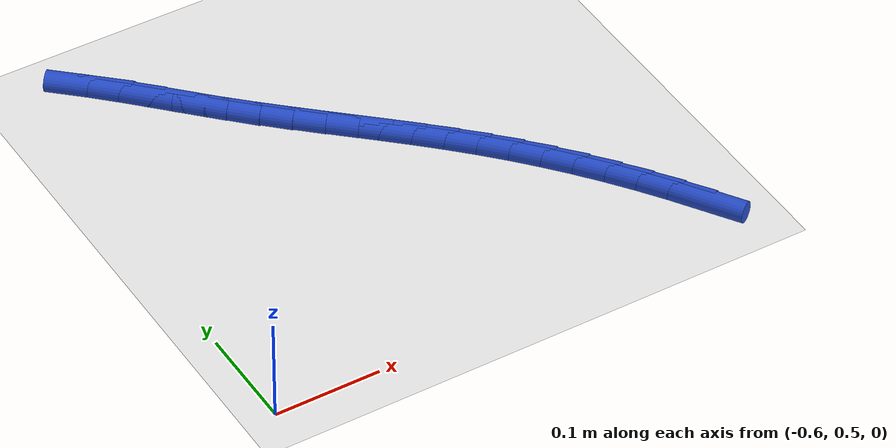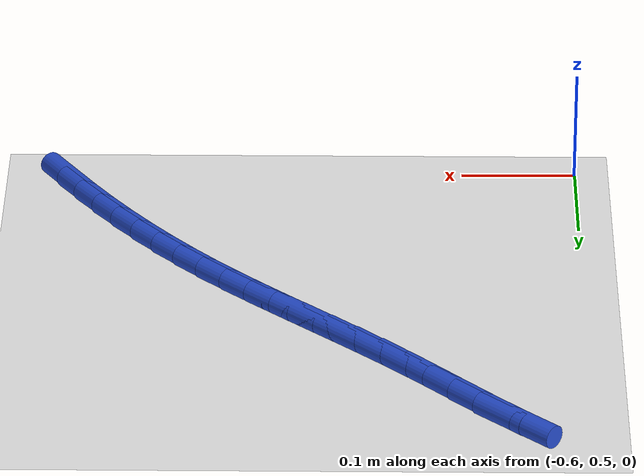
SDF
<sdf version="1.6">
 <world name="default">
  <model name="ground_plane">
   <static>1</static>
   <link name="link">
    <collision name="collision">
     <geometry><plane><normal>0 0 1</normal><size>100 100</size></plane></geometry>
     <surface><friction><ode><mu>100</mu><mu2>50</mu2></ode></friction></surface>
    </collision>
    <visual name="visual">
     <cast_shadows>0</cast_shadows>
     <geometry><plane><normal>0 0 1</normal><size>100 100</size></plane></geometry>
     <material>
      <script><uri>file://media/materials/scripts/gazebo.material</uri><name>Gazebo/WhiteGlow</name></script>
     </material>
    </visual>
   </link>
  </model>
  <model name="line">
   <link name="link_19">
    <pose>-0.15506047580860213 0.5310757925953802 0.01 0 1.57 -0.989849758271775</pose>
    <collision name="collision">
     <geometry><cylinder><radius>0.01</radius><length>0.08</length></cylinder></geometry>
    </collision>
    <visual name="visual">
     <material>
      <script><name>Gazebo/Blue</name><uri>file://media/materials/scripts/gazebo.material</uri></script>
     </material>
     <geometry><cylinder><radius>0.01</radius><length>0.08</length></cylinder></geometry>
    </visual>
   </link>
   <link name="link_20">
    <pose>-0.17134262060047864 0.5558763943015665 0.01 0 1.57 -0.9605983616050993</pose>
    <collision name="collision">
     <geometry><cylinder><radius>0.01</radius><length>0.08</length></cylinder></geometry>
    </collision>
    <visual name="visual">
     <material>
      <script><name>Gazebo/Blue</name><uri>file://media/materials/scripts/gazebo.material</uri></script>
     </material>
     <geometry><cylinder><radius>0.01</radius><length>0.08</length></cylinder></geometry>
    </visual>
   </link>
   <link name="link_21">
    <pose>-0.18832112719402166 0.5801586841178844 0.01 0 1.57 -0.9312000970392649</pose>
    <collision name="collision">
     <geometry><cylinder><radius>0.01</radius><length>0.08</length></cylinder></geometry>
    </collision>
    <visual name="visual">
     <material>
      <script><name>Gazebo/Blue</name><uri>file://media/materials/scripts/gazebo.material</uri></script>
     </material>
     <geometry><cylinder><radius>0.01</radius><length>0.08</length></cylinder></geometry>
    </visual>
   </link>
   <link name="link_22">
    <pose>-0.20597688609973971 0.6038922093001388 0.01 0 1.57 -0.9015980373990731</pose>
    <collision name="collision">
     <geometry><cylinder><radius>0.01</radius><length>0.08</length></cylinder></geometry>
    </collision>
    <visual name="visual">
     <material>
      <script><name>Gazebo/Blue</name><uri>file://media/materials/scripts/gazebo.material</uri></script>
     </material>
     <geometry><cylinder><radius>0.01</radius><length>0.08</length></cylinder></geometry>
    </visual>
   </link>
   <link name="link_23">
    <pose>-0.22429078782814138 0.6270465171041351 0.01 0 1.57 -0.8717351146596326</pose>
    <collision name="collision">
     <geometry><cylinder><radius>0.01</radius><length>0.08</length></cylinder></geometry>
    </collision>
    <visual name="visual">
     <material>
      <script><name>Gazebo/Blue</name><uri>file://media/materials/scripts/gazebo.material</uri></script>
     </material>
     <geometry><cylinder><radius>0.01</radius><length>0.08</length></cylinder></geometry>
    </visual>
   </link>
   <link name="link_24">
    <pose>-0.24324372288973511 0.6495911547856783 0.01 0 1.57 -0.8415541884047403</pose>
    <collision name="collision">
     <geometry><cylinder><radius>0.01</radius><length>0.08</length></cylinder></geometry>
    </collision>
    <visual name="visual">
     <material>
      <script><name>Gazebo/Blue</name><uri>file://media/materials/scripts/gazebo.material</uri></script>
     </material>
     <geometry><cylinder><radius>0.01</radius><length>0.08</length></cylinder></geometry>
    </visual>
   </link>
   <link name="link_25">
    <pose>-0.26281658179502937 0.6714956696005736 0.01 0 1.57 -0.8110014844351243</pose>
    <collision name="collision">
     <geometry><cylinder><radius>0.01</radius><length>0.08</length></cylinder></geometry>
    </collision>
    <visual name="visual">
     <material>
      <script><name>Gazebo/Blue</name><uri>file://media/materials/scripts/gazebo.material</uri></script>
     </material>
     <geometry><cylinder><radius>0.01</radius><length>0.08</length></cylinder></geometry>
    </visual>
   </link>
   <link name="link_26">
    <pose>-0.2829902071569155 0.6927297001905018 0.01 0 1.57 -0.7818047484688971</pose>
    <collision name="collision">
     <geometry><cylinder><radius>0.01</radius><length>0.08</length></cylinder></geometry>
    </collision>
    <visual name="visual">
     <material>
      <script><name>Gazebo/Blue</name><uri>file://media/materials/scripts/gazebo.material</uri></script>
     </material>
     <geometry><cylinder><radius>0.01</radius><length>0.08</length></cylinder></geometry>
    </visual>
   </link>
   <link name="link_27">
    <pose>-0.3037201316658635 0.7133111750612405 0.01 0 1.57 -0.7587226585505692</pose>
    <collision name="collision">
     <geometry><cylinder><radius>0.01</radius><length>0.08</length></cylinder></geometry>
    </collision>
    <visual name="visual">
     <material>
      <script><name>Gazebo/Blue</name><uri>file://media/materials/scripts/gazebo.material</uri></script>
     </material>
     <geometry><cylinder><radius>0.01</radius><length>0.08</length></cylinder></geometry>
    </visual>
   </link>
   <link name="link_28">
    <pose>-0.3248950701400707 0.7333855073436736 0.01 0 1.57 -0.7426320465863961</pose>
    <collision name="collision">
     <geometry><cylinder><radius>0.01</radius><length>0.08</length></cylinder></geometry>
    </collision>
    <visual name="visual">
     <material>
      <script><name>Gazebo/Blue</name><uri>file://media/materials/scripts/gazebo.material</uri></script>
     </material>
     <geometry><cylinder><radius>0.01</radius><length>0.08</length></cylinder></geometry>
    </visual>
   </link>
   <link name="link_29">
    <pose>-0.3463928390266051 0.7531189036287337 0.01 0 1.57 -0.7335807956889542</pose>
    <collision name="collision">
     <geometry><cylinder><radius>0.01</radius><length>0.08</length></cylinder></geometry>
    </collision>
    <visual name="visual">
     <material>
      <script><name>Gazebo/Blue</name><uri>file://media/materials/scripts/gazebo.material</uri></script>
     </material>
     <geometry><cylinder><radius>0.01</radius><length>0.08</length></cylinder></geometry>
    </visual>
   </link>
   <link name="link_30">
    <pose>-0.3680912547725344 0.7726775705073525 0.01 0 1.57 -0.7315693675636631</pose>
    <collision name="collision">
     <geometry><cylinder><radius>0.01</radius><length>0.08</length></cylinder></geometry>
    </collision>
    <visual name="visual">
     <material>
      <script><name>Gazebo/Blue</name><uri>file://media/materials/scripts/gazebo.material</uri></script>
     </material>
     <geometry><cylinder><radius>0.01</radius><length>0.08</length></cylinder></geometry>
    </visual>
   </link>
   <link name="link_31">
    <pose>-0.3898681338249267 0.7922277145704631 0.01 0 1.57 -0.7365643659230418</pose>
    <collision name="collision">
     <geometry><cylinder><radius>0.01</radius><length>0.08</length></cylinder></geometry>
    </collision>
    <visual name="visual">
     <material>
      <script><name>Gazebo/Blue</name><uri>file://media/materials/scripts/gazebo.material</uri></script>
     </material>
     <geometry><cylinder><radius>0.01</radius><length>0.08</length></cylinder></geometry>
    </visual>
   </link>
   <link name="link_32">
    <pose>-0.4116012926308501 0.8119355424089982 0.01 0 1.57 -0.7485020615696558</pose>
    <collision name="collision">
     <geometry><cylinder><radius>0.01</radius><length>0.08</length></cylinder></geometry>
    </collision>
    <visual name="visual">
     <material>
      <script><name>Gazebo/Blue</name><uri>file://media/materials/scripts/gazebo.material</uri></script>
     </material>
     <geometry><cylinder><radius>0.01</radius><length>0.08</length></cylinder></geometry>
    </visual>
   </link>
   <link name="link_33">
    <pose>-0.4331685476373724 0.83196726061389 0.01 0 1.57 -0.7672642424907525</pose>
    <collision name="collision">
     <geometry><cylinder><radius>0.01</radius><length>0.08</length></cylinder></geometry>
    </collision>
    <visual name="visual">
     <material>
      <script><name>Gazebo/Blue</name><uri>file://media/materials/scripts/gazebo.material</uri></script>
     </material>
     <geometry><cylinder><radius>0.01</radius><length>0.08</length></cylinder></geometry>
    </visual>
   </link>
   <link name="link_34">
    <pose>-0.45444798522687163 0.8524886030653619 0.01 0 1.57 -0.7873415162183817</pose>
    <collision name="collision">
     <geometry><cylinder><radius>0.01</radius><length>0.08</length></cylinder></geometry>
    </collision>
    <visual name="visual">
     <material>
      <script><name>Gazebo/Blue</name><uri>file://media/materials/scripts/gazebo.material</uri></script>
     </material>
     <geometry><cylinder><radius>0.01</radius><length>0.08</length></cylinder></geometry>
    </visual>
   </link>
   <link name="link_35">
    <pose>-0.47539962058452784 0.8735218299261602 0.01 0 1.57 -0.7959267499839467</pose>
    <collision name="collision">
     <geometry><cylinder><radius>0.01</radius><length>0.08</length></cylinder></geometry>
    </collision>
    <visual name="visual">
     <material>
      <script><name>Gazebo/Blue</name><uri>file://media/materials/scripts/gazebo.material</uri></script>
     </material>
     <geometry><cylinder><radius>0.01</radius><length>0.08</length></cylinder></geometry>
    </visual>
   </link>
   <link name="link_36">
    <pose>-0.4961802085169701 0.8947446709387192 0.01 0 1.57 -0.7912380117444903</pose>
    <collision name="collision">
     <geometry><cylinder><radius>0.01</radius><length>0.08</length></cylinder></geometry>
    </collision>
    <visual name="visual">
     <material>
      <script><name>Gazebo/Blue</name><uri>file://media/materials/scripts/gazebo.material</uri></script>
     </material>
     <geometry><cylinder><radius>0.01</radius><length>0.08</length></cylinder></geometry>
    </visual>
   </link>
   <link name="link_37">
    <pose>-0.5169754287399421 0.9157842025453363 0.01 0 1.57 -0.7730495137718516</pose>
    <collision name="collision">
     <geometry><cylinder><radius>0.01</radius><length>0.08</length></cylinder></geometry>
    </collision>
    <visual name="visual">
     <material>
      <script><name>Gazebo/Blue</name><uri>file://media/materials/scripts/gazebo.material</uri></script>
     </material>
     <geometry><cylinder><radius>0.01</radius><length>0.08</length></cylinder></geometry>
    </visual>
   </link>
   <link name="link_38">
    <pose>-0.5379709609691868 0.9362675011883084 0.01 0 1.57 -0.7407874458995741</pose>
    <collision name="collision">
     <geometry><cylinder><radius>0.01</radius><length>0.08</length></cylinder></geometry>
    </collision>
    <visual name="visual">
     <material>
      <script><name>Gazebo/Blue</name><uri>file://media/materials/scripts/gazebo.material</uri></script>
     </material>
     <geometry><cylinder><radius>0.01</radius><length>0.08</length></cylinder></geometry>
    </visual>
   </link>
  </model>
 </world>
</sdf>
